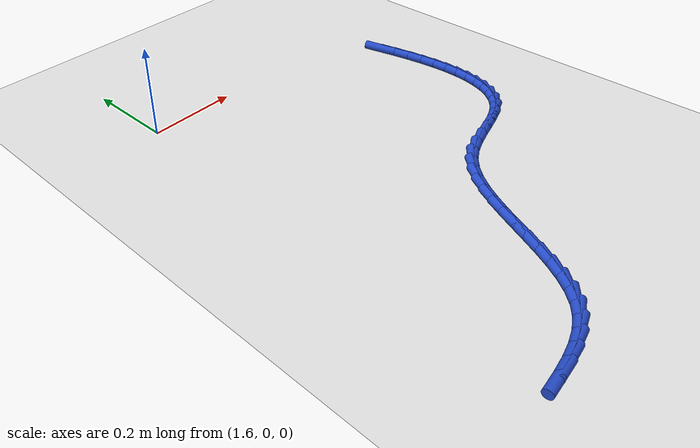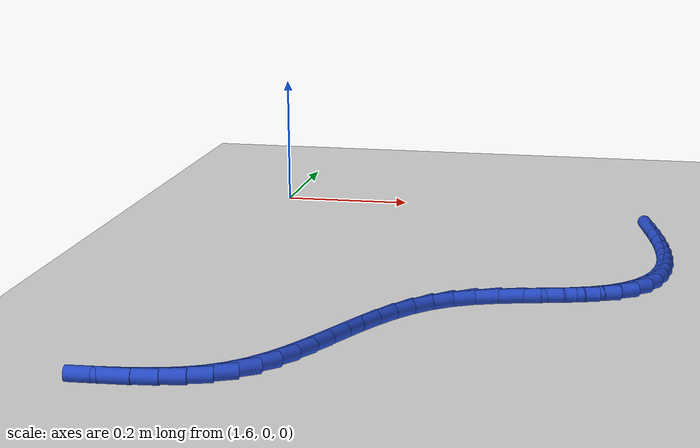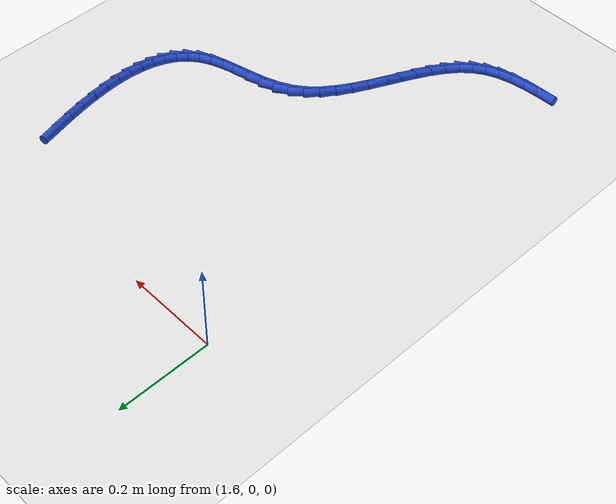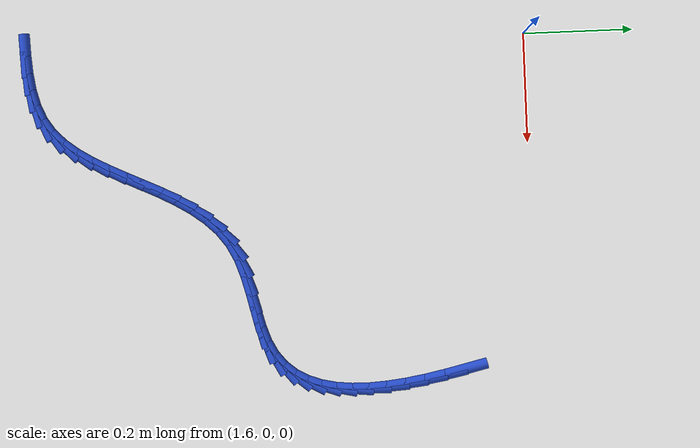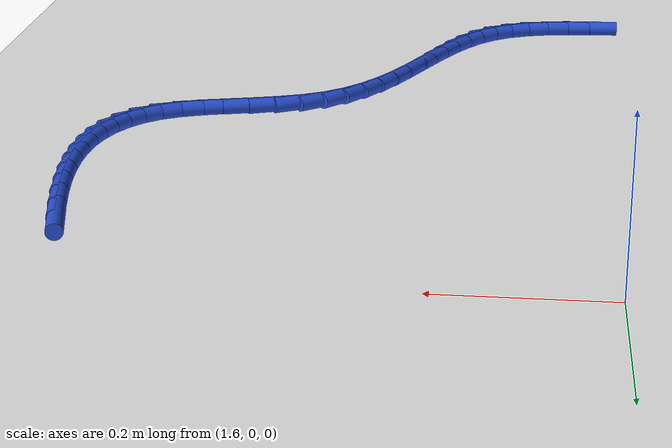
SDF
<sdf version="1.6">
 <world name="default">
  <model name="ground_plane">
   <static>1</static>
   <link name="link">
    <collision name="collision">
     <geometry><plane><normal>0 0 1</normal><size>100 100</size></plane></geometry>
     <surface><friction><ode><mu>100</mu><mu2>50</mu2></ode></friction></surface>
    </collision>
    <visual name="visual">
     <cast_shadows>0</cast_shadows>
     <geometry><plane><normal>0 0 1</normal><size>100 100</size></plane></geometry>
     <material>
      <script><uri>file://media/materials/scripts/gazebo.material</uri><name>Gazebo/WhiteGlow</name></script>
     </material>
    </visual>
   </link>
  </model>
  <model name="line">
   <link name="link_112">
    <pose>2.2084555746789682 -0.12843890515174966 0.01 0 1.57 -1.3385154696390704</pose>
    <collision name="collision">
     <geometry><cylinder><radius>0.01</radius><length>0.08</length></cylinder></geometry>
    </collision>
    <visual name="visual">
     <material>
      <script><name>Gazebo/Blue</name><uri>file://media/materials/scripts/gazebo.material</uri></script>
     </material>
     <geometry><cylinder><radius>0.01</radius><length>0.08</length></cylinder></geometry>
    </visual>
   </link>
   <link name="link_113">
    <pose>2.217313473277673 -0.16588501757491114 0.01 0 1.57 -1.368382159888739</pose>
    <collision name="collision">
     <geometry><cylinder><radius>0.01</radius><length>0.08</length></cylinder></geometry>
    </collision>
    <visual name="visual">
     <material>
      <script><name>Gazebo/Blue</name><uri>file://media/materials/scripts/gazebo.material</uri></script>
     </material>
     <geometry><cylinder><radius>0.01</radius><length>0.08</length></cylinder></geometry>
    </visual>
   </link>
   <link name="link_114">
    <pose>2.224843970019001 -0.2025789387706918 0.01 0 1.57 -1.4058015992249246</pose>
    <collision name="collision">
     <geometry><cylinder><radius>0.01</radius><length>0.08</length></cylinder></geometry>
    </collision>
    <visual name="visual">
     <material>
      <script><name>Gazebo/Blue</name><uri>file://media/materials/scripts/gazebo.material</uri></script>
     </material>
     <geometry><cylinder><radius>0.01</radius><length>0.08</length></cylinder></geometry>
    </visual>
   </link>
   <link name="link_115">
    <pose>2.230789243164619 -0.2382844740882361 0.01 0 1.57 -1.4523820842603123</pose>
    <collision name="collision">
     <geometry><cylinder><radius>0.01</radius><length>0.08</length></cylinder></geometry>
    </collision>
    <visual name="visual">
     <material>
      <script><name>Gazebo/Blue</name><uri>file://media/materials/scripts/gazebo.material</uri></script>
     </material>
     <geometry><cylinder><radius>0.01</radius><length>0.08</length></cylinder></geometry>
    </visual>
   </link>
   <link name="link_116">
    <pose>2.23489147097619 -0.27276542887669114 0.01 0 1.57 -1.5102601511140097</pose>
    <collision name="collision">
     <geometry><cylinder><radius>0.01</radius><length>0.08</length></cylinder></geometry>
    </collision>
    <visual name="visual">
     <material>
      <script><name>Gazebo/Blue</name><uri>file://media/materials/scripts/gazebo.material</uri></script>
     </material>
     <geometry><cylinder><radius>0.01</radius><length>0.08</length></cylinder></geometry>
    </visual>
   </link>
   <link name="link_117">
    <pose>2.2368928317153784 -0.30578560848520303 0.01 0 1.57 1.559389048463401</pose>
    <collision name="collision">
     <geometry><cylinder><radius>0.01</radius><length>0.08</length></cylinder></geometry>
    </collision>
    <visual name="visual">
     <material>
      <script><name>Gazebo/Blue</name><uri>file://media/materials/scripts/gazebo.material</uri></script>
     </material>
     <geometry><cylinder><radius>0.01</radius><length>0.08</length></cylinder></geometry>
    </visual>
   </link>
   <link name="link_118">
    <pose>2.2365355036438497 -0.3371088182629188 0.01 0 1.57 1.4699543131883317</pose>
    <collision name="collision">
     <geometry><cylinder><radius>0.01</radius><length>0.08</length></cylinder></geometry>
    </collision>
    <visual name="visual">
     <material>
      <script><name>Gazebo/Blue</name><uri>file://media/materials/scripts/gazebo.material</uri></script>
     </material>
     <geometry><cylinder><radius>0.01</radius><length>0.08</length></cylinder></geometry>
    </visual>
   </link>
   <link name="link_119">
    <pose>2.2335616650232666 -0.366498863558983 0.01 0 1.57 1.3591703392139243</pose>
    <collision name="collision">
     <geometry><cylinder><radius>0.01</radius><length>0.08</length></cylinder></geometry>
    </collision>
    <visual name="visual">
     <material>
      <script><name>Gazebo/Blue</name><uri>file://media/materials/scripts/gazebo.material</uri></script>
     </material>
     <geometry><cylinder><radius>0.01</radius><length>0.08</length></cylinder></geometry>
    </visual>
   </link>
   <link name="link_120">
    <pose>2.227713494115296 -0.39371954972254264 0.01 0 1.57 1.223569427378102</pose>
    <collision name="collision">
     <geometry><cylinder><radius>0.01</radius><length>0.08</length></cylinder></geometry>
    </collision>
    <visual name="visual">
     <material>
      <script><name>Gazebo/Blue</name><uri>file://media/materials/scripts/gazebo.material</uri></script>
     </material>
     <geometry><cylinder><radius>0.01</radius><length>0.08</length></cylinder></geometry>
    </visual>
   </link>
   <link name="link_121">
    <pose>2.2187331691815992 -0.418534682102744 0.01 0 1.57 1.0619160138781811</pose>
    <collision name="collision">
     <geometry><cylinder><radius>0.01</radius><length>0.08</length></cylinder></geometry>
    </collision>
    <visual name="visual">
     <material>
      <script><name>Gazebo/Blue</name><uri>file://media/materials/scripts/gazebo.material</uri></script>
     </material>
     <geometry><cylinder><radius>0.01</radius><length>0.08</length></cylinder></geometry>
    </visual>
   </link>
   <link name="link_122">
    <pose>2.206362868483843 -0.4407080660487336 0.01 0 1.57 0.8779400518553809</pose>
    <collision name="collision">
     <geometry><cylinder><radius>0.01</radius><length>0.08</length></cylinder></geometry>
    </collision>
    <visual name="visual">
     <material>
      <script><name>Gazebo/Blue</name><uri>file://media/materials/scripts/gazebo.material</uri></script>
     </material>
     <geometry><cylinder><radius>0.01</radius><length>0.08</length></cylinder></geometry>
    </visual>
   </link>
   <link name="link_123">
    <pose>2.190344770283691 -0.46000350690965675 0.01 0 1.57 0.6821134376332364</pose>
    <collision name="collision">
     <geometry><cylinder><radius>0.01</radius><length>0.08</length></cylinder></geometry>
    </collision>
    <visual name="visual">
     <material>
      <script><name>Gazebo/Blue</name><uri>file://media/materials/scripts/gazebo.material</uri></script>
     </material>
     <geometry><cylinder><radius>0.01</radius><length>0.08</length></cylinder></geometry>
    </visual>
   </link>
   <link name="link_124">
    <pose>2.170421052842808 -0.47618481003466007 0.01 0 1.57 0.4897195962055765</pose>
    <collision name="collision">
     <geometry><cylinder><radius>0.01</radius><length>0.08</length></cylinder></geometry>
    </collision>
    <visual name="visual">
     <material>
      <script><name>Gazebo/Blue</name><uri>file://media/materials/scripts/gazebo.material</uri></script>
     </material>
     <geometry><cylinder><radius>0.01</radius><length>0.08</length></cylinder></geometry>
    </visual>
   </link>
   <link name="link_125">
    <pose>2.146339165613505 -0.4890211307264 0.01 0 1.57 0.3366040723523489</pose>
    <collision name="collision">
     <geometry><cylinder><radius>0.01</radius><length>0.08</length></cylinder></geometry>
    </collision>
    <visual name="visual">
     <material>
      <script><name>Gazebo/Blue</name><uri>file://media/materials/scripts/gazebo.material</uri></script>
     </material>
     <geometry><cylinder><radius>0.01</radius><length>0.08</length></cylinder></geometry>
    </visual>
   </link>
   <link name="link_126">
    <pose>2.1183665051677245 -0.49880934052926384 0.01 0 1.57 0.25545711683865224</pose>
    <collision name="collision">
     <geometry><cylinder><radius>0.01</radius><length>0.08</length></cylinder></geometry>
    </collision>
    <visual name="visual">
     <material>
      <script><name>Gazebo/Blue</name><uri>file://media/materials/scripts/gazebo.material</uri></script>
     </material>
     <geometry><cylinder><radius>0.01</radius><length>0.08</length></cylinder></geometry>
    </visual>
   </link>
   <link name="link_127">
    <pose>2.0877223846527 -0.5068124512326507 0.01 0 1.57 0.23275172717604262</pose>
    <collision name="collision">
     <geometry><cylinder><radius>0.01</radius><length>0.08</length></cylinder></geometry>
    </collision>
    <visual name="visual">
     <material>
      <script><name>Gazebo/Blue</name><uri>file://media/materials/scripts/gazebo.material</uri></script>
     </material>
     <geometry><cylinder><radius>0.01</radius><length>0.08</length></cylinder></geometry>
    </visual>
   </link>
   <link name="link_128">
    <pose>2.0557278169444473 -0.5143966939662187 0.01 0 1.57 0.26036541816415876</pose>
    <collision name="collision">
     <geometry><cylinder><radius>0.01</radius><length>0.08</length></cylinder></geometry>
    </collision>
    <visual name="visual">
     <material>
      <script><name>Gazebo/Blue</name><uri>file://media/materials/scripts/gazebo.material</uri></script>
     </material>
     <geometry><cylinder><radius>0.01</radius><length>0.08</length></cylinder></geometry>
    </visual>
   </link>
   <link name="link_129">
    <pose>2.0237038149189783 -0.5229282998596254 0.01 0 1.57 0.33924812646407754</pose>
    <collision name="collision">
     <geometry><cylinder><radius>0.01</radius><length>0.08</length></cylinder></geometry>
    </collision>
    <visual name="visual">
     <material>
      <script><name>Gazebo/Blue</name><uri>file://media/materials/scripts/gazebo.material</uri></script>
     </material>
     <geometry><cylinder><radius>0.01</radius><length>0.08</length></cylinder></geometry>
    </visual>
   </link>
   <link name="link_130">
    <pose>1.9929713914523093 -0.5337735000425289 0.01 0 1.57 0.47670887793793465</pose>
    <collision name="collision">
     <geometry><cylinder><radius>0.01</radius><length>0.08</length></cylinder></geometry>
    </collision>
    <visual name="visual">
     <material>
      <script><name>Gazebo/Blue</name><uri>file://media/materials/scripts/gazebo.material</uri></script>
     </material>
     <geometry><cylinder><radius>0.01</radius><length>0.08</length></cylinder></geometry>
    </visual>
   </link>
   <link name="link_131">
    <pose>1.9648497720426485 -0.5482964843655503 0.01 0 1.57 0.6556387511492021</pose>
    <collision name="collision">
     <geometry><cylinder><radius>0.01</radius><length>0.08</length></cylinder></geometry>
    </collision>
    <visual name="visual">
     <material>
      <script><name>Gazebo/Blue</name><uri>file://media/materials/scripts/gazebo.material</uri></script>
     </material>
     <geometry><cylinder><radius>0.01</radius><length>0.08</length></cylinder></geometry>
    </visual>
   </link>
   <link name="link_132">
    <pose>1.9401568025865708 -0.5672888409229724 0.01 0 1.57 0.8138393855071153</pose>
    <collision name="collision">
     <geometry><cylinder><radius>0.01</radius><length>0.08</length></cylinder></geometry>
    </collision>
    <visual name="visual">
     <material>
      <script><name>Gazebo/Blue</name><uri>file://media/materials/scripts/gazebo.material</uri></script>
     </material>
     <geometry><cylinder><radius>0.01</radius><length>0.08</length></cylinder></geometry>
    </visual>
   </link>
   <link name="link_133">
    <pose>1.9185245616670652 -0.5901879494524748 0.01 0 1.57 0.9378148923421517</pose>
    <collision name="collision">
     <geometry><cylinder><radius>0.01</radius><length>0.08</length></cylinder></geometry>
    </collision>
    <visual name="visual">
     <material>
      <script><name>Gazebo/Blue</name><uri>file://media/materials/scripts/gazebo.material</uri></script>
     </material>
     <geometry><cylinder><radius>0.01</radius><length>0.08</length></cylinder></geometry>
    </visual>
   </link>
   <link name="link_134">
    <pose>1.8994137392417494 -0.6162354549079838 0.01 0 1.57 1.0286672594007247</pose>
    <collision name="collision">
     <geometry><cylinder><radius>0.01</radius><length>0.08</length></cylinder></geometry>
    </collision>
    <visual name="visual">
     <material>
      <script><name>Gazebo/Blue</name><uri>file://media/materials/scripts/gazebo.material</uri></script>
     </material>
     <geometry><cylinder><radius>0.01</radius><length>0.08</length></cylinder></geometry>
    </visual>
   </link>
   <link name="link_135">
    <pose>1.8822850252682386 -0.6446730022434257 0.01 0 1.57 1.0899712773372447</pose>
    <collision name="collision">
     <geometry><cylinder><radius>0.01</radius><length>0.08</length></cylinder></geometry>
    </collision>
    <visual name="visual">
     <material>
      <script><name>Gazebo/Blue</name><uri>file://media/materials/scripts/gazebo.material</uri></script>
     </material>
     <geometry><cylinder><radius>0.01</radius><length>0.08</length></cylinder></geometry>
    </visual>
   </link>
   <link name="link_136">
    <pose>1.8665991097041512 -0.6747422364127251 0.01 0 1.57 1.1251167255324612</pose>
    <collision name="collision">
     <geometry><cylinder><radius>0.01</radius><length>0.08</length></cylinder></geometry>
    </collision>
    <visual name="visual">
     <material>
      <script><name>Gazebo/Blue</name><uri>file://media/materials/scripts/gazebo.material</uri></script>
     </material>
     <geometry><cylinder><radius>0.01</radius><length>0.08</length></cylinder></geometry>
    </visual>
   </link>
   <link name="link_137">
    <pose>1.851816682507104 -0.7056848023698085 0.01 0 1.57 1.1361611967527143</pose>
    <collision name="collision">
     <geometry><cylinder><radius>0.01</radius><length>0.08</length></cylinder></geometry>
    </collision>
    <visual name="visual">
     <material>
      <script><name>Gazebo/Blue</name><uri>file://media/materials/scripts/gazebo.material</uri></script>
     </material>
     <geometry><cylinder><radius>0.01</radius><length>0.08</length></cylinder></geometry>
    </visual>
   </link>
   <link name="link_138">
    <pose>1.8373984336347138 -0.7367423450686017 0.01 0 1.57 1.1234211529697486</pose>
    <collision name="collision">
     <geometry><cylinder><radius>0.01</radius><length>0.08</length></cylinder></geometry>
    </collision>
    <visual name="visual">
     <material>
      <script><name>Gazebo/Blue</name><uri>file://media/materials/scripts/gazebo.material</uri></script>
     </material>
     <geometry><cylinder><radius>0.01</radius><length>0.08</length></cylinder></geometry>
    </visual>
   </link>
   <link name="link_139">
    <pose>1.8228050530445972 -0.7671565094630314 0.01 0 1.57 1.0852900019940828</pose>
    <collision name="collision">
     <geometry><cylinder><radius>0.01</radius><length>0.08</length></cylinder></geometry>
    </collision>
    <visual name="visual">
     <material>
      <script><name>Gazebo/Blue</name><uri>file://media/materials/scripts/gazebo.material</uri></script>
     </material>
     <geometry><cylinder><radius>0.01</radius><length>0.08</length></cylinder></geometry>
    </visual>
   </link>
   <link name="link_140">
    <pose>1.8074972306943708 -0.7961689405070216 0.01 0 1.57 1.018141033623541</pose>
    <collision name="collision">
     <geometry><cylinder><radius>0.01</radius><length>0.08</length></cylinder></geometry>
    </collision>
    <visual name="visual">
     <material>
      <script><name>Gazebo/Blue</name><uri>file://media/materials/scripts/gazebo.material</uri></script>
     </material>
     <geometry><cylinder><radius>0.01</radius><length>0.08</length></cylinder></geometry>
    </visual>
   </link>
   <link name="link_141">
    <pose>1.7909356565416525 -0.8230212831544992 0.01 0 1.57 0.9165738006751475</pose>
    <collision name="collision">
     <geometry><cylinder><radius>0.01</radius><length>0.08</length></cylinder></geometry>
    </collision>
    <visual name="visual">
     <material>
      <script><name>Gazebo/Blue</name><uri>file://media/materials/scripts/gazebo.material</uri></script>
     </material>
     <geometry><cylinder><radius>0.01</radius><length>0.08</length></cylinder></geometry>
    </visual>
   </link>
   <link name="link_142">
    <pose>1.7725810205440586 -0.8469551823593899 0.01 0 1.57 0.7748986950806191</pose>
    <collision name="collision">
     <geometry><cylinder><radius>0.01</radius><length>0.08</length></cylinder></geometry>
    </collision>
    <visual name="visual">
     <material>
      <script><name>Gazebo/Blue</name><uri>file://media/materials/scripts/gazebo.material</uri></script>
     </material>
     <geometry><cylinder><radius>0.01</radius><length>0.08</length></cylinder></geometry>
    </visual>
   </link>
   <link name="link_143">
    <pose>1.7518940126592057 -0.8672122830756204 0.01 0 1.57 0.5924064161084576</pose>
    <collision name="collision">
     <geometry><cylinder><radius>0.01</radius><length>0.08</length></cylinder></geometry>
    </collision>
    <visual name="visual">
     <material>
      <script><name>Gazebo/Blue</name><uri>file://media/materials/scripts/gazebo.material</uri></script>
     </material>
     <geometry><cylinder><radius>0.01</radius><length>0.08</length></cylinder></geometry>
    </visual>
   </link>
   <link name="link_144">
    <pose>1.7283508270627117 -0.8830579417612227 0.01 0 1.57 0.4066259815243587</pose>
    <collision name="collision">
     <geometry><cylinder><radius>0.01</radius><length>0.08</length></cylinder></geometry>
    </collision>
    <visual name="visual">
     <material>
      <script><name>Gazebo/Blue</name><uri>file://media/materials/scripts/gazebo.material</uri></script>
     </material>
     <geometry><cylinder><radius>0.01</radius><length>0.08</length></cylinder></geometry>
    </visual>
   </link>
   <link name="link_145">
    <pose>1.7018839039391527 -0.8944552784837964 0.01 0 1.57 0.26027473339648544</pose>
    <collision name="collision">
     <geometry><cylinder><radius>0.01</radius><length>0.08</length></cylinder></geometry>
    </collision>
    <visual name="visual">
     <material>
      <script><name>Gazebo/Blue</name><uri>file://media/materials/scripts/gazebo.material</uri></script>
     </material>
     <geometry><cylinder><radius>0.01</radius><length>0.08</length></cylinder></geometry>
    </visual>
   </link>
   <link name="link_146">
    <pose>1.6729452950022194 -0.9021620855031539 0.01 0 1.57 0.15450604348649333</pose>
    <collision name="collision">
     <geometry><cylinder><radius>0.01</radius><length>0.08</length></cylinder></geometry>
    </collision>
    <visual name="visual">
     <material>
      <script><name>Gazebo/Blue</name><uri>file://media/materials/scripts/gazebo.material</uri></script>
     </material>
     <geometry><cylinder><radius>0.01</radius><length>0.08</length></cylinder></geometry>
    </visual>
   </link>
   <link name="link_147">
    <pose>1.6420152965159043 -0.9069793511158546 0.01 0 1.57 0.0839153168711128</pose>
    <collision name="collision">
     <geometry><cylinder><radius>0.01</radius><length>0.08</length></cylinder></geometry>
    </collision>
    <visual name="visual">
     <material>
      <script><name>Gazebo/Blue</name><uri>file://media/materials/scripts/gazebo.material</uri></script>
     </material>
     <geometry><cylinder><radius>0.01</radius><length>0.08</length></cylinder></geometry>
    </visual>
   </link>
   <link name="link_148">
    <pose>1.609574204744199 -0.9097080636184571 0.01 0 1.57 0.0430288881201659</pose>
    <collision name="collision">
     <geometry><cylinder><radius>0.01</radius><length>0.08</length></cylinder></geometry>
    </collision>
    <visual name="visual">
     <material>
      <script><name>Gazebo/Blue</name><uri>file://media/materials/scripts/gazebo.material</uri></script>
     </material>
     <geometry><cylinder><radius>0.01</radius><length>0.08</length></cylinder></geometry>
    </visual>
   </link>
  </model>
 </world>
</sdf>
